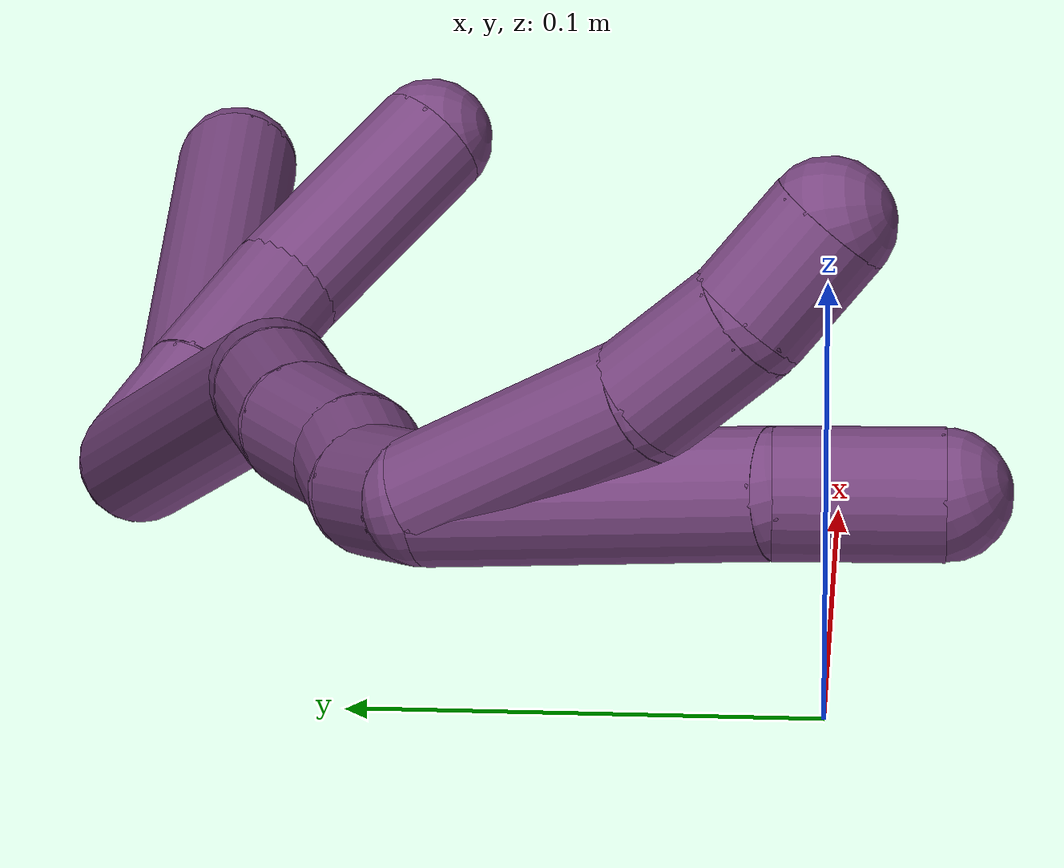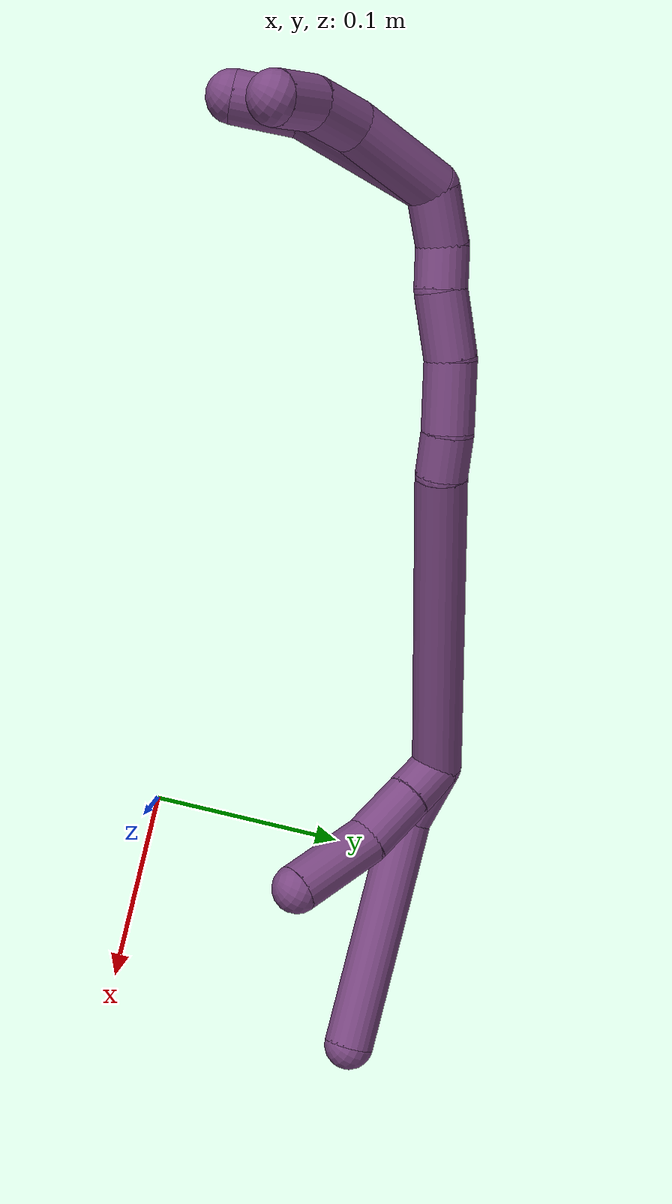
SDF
<sdf version="1.7">
 <world name="default">
  <model name="20">
   <static>0</static>
   <link name="20">
    <collision name="collision-cylinder-e_1_2_8">
     <pose>0.011991 0.010187 -2.8e-05 -1.5735 0.866553 -0.868614</pose>
     <geometry><cylinder><radius>0.0125</radius><length>0.031469</length></cylinder></geometry>
     <surface>
      <friction><ode><mu>1.16</mu><mu2>1.16</mu2><slip1>0</slip1><slip2>0</slip2></ode></friction>
      <contact><ode><kp>1e+06</kp><kd>1</kd><max_vel>0</max_vel><min_depth>0.001</min_depth></ode></contact>
     </surface>
    </collision>
    <visual name="visual-cylinder-e_1_2_8">
     <pose>0.011991 0.010187 -2.8e-05 -1.5735 0.866553 -0.868614</pose>
     <geometry><cylinder><radius>0.0125</radius><length>0.031469</length></cylinder></geometry>
     <material><ambient>0.478431 0.278431 0.509804 1</ambient></material>
    </visual>
    <collision name="collision-cylinder-e_2_8_6">
     <pose>0.056309 0.069139 -0.009514 -1.76239 0.576922 -0.690805</pose>
     <geometry><cylinder><radius>0.0125</radius><length>0.118531</length></cylinder></geometry>
     <surface>
      <friction><ode><mu>1.16</mu><mu2>1.16</mu2><slip1>0</slip1><slip2>0</slip2></ode></friction>
      <contact><ode><kp>1e+06</kp><kd>1</kd><max_vel>0</max_vel><min_depth>0.001</min_depth></ode></contact>
     </surface>
    </collision>
    <visual name="visual-cylinder-e_2_8_6">
     <pose>0.056309 0.069139 -0.009514 -1.76239 0.576922 -0.690805</pose>
     <geometry><cylinder><radius>0.0125</radius><length>0.118531</length></cylinder></geometry>
     <material><ambient>0.478431 0.278431 0.509804 1</ambient></material>
    </visual>
    <collision name="collision-cylinder-e_1_2_9">
     <pose>0.003987 0.009323 0.004987 -1.07962 0.360606 -0.217574</pose>
     <geometry><cylinder><radius>0.0125</radius><length>0.022599</length></cylinder></geometry>
     <surface>
      <friction><ode><mu>1.16</mu><mu2>1.16</mu2><slip1>0</slip1><slip2>0</slip2></ode></friction>
      <contact><ode><kp>1e+06</kp><kd>1</kd><max_vel>0</max_vel><min_depth>0.001</min_depth></ode></contact>
     </surface>
    </collision>
    <visual name="visual-cylinder-e_1_2_9">
     <pose>0.003987 0.009323 0.004987 -1.07962 0.360606 -0.217574</pose>
     <geometry><cylinder><radius>0.0125</radius><length>0.022599</length></cylinder></geometry>
     <material><ambient>0.478431 0.278431 0.509804 1</ambient></material>
    </visual>
    <collision name="collision-cylinder-e_2_9_10">
     <pose>0.014243 0.031636 0.01688 -1.08216 0.402821 -0.24416</pose>
     <geometry><cylinder><radius>0.0125</radius><length>0.031985</length></cylinder></geometry>
     <surface>
      <friction><ode><mu>1.16</mu><mu2>1.16</mu2><slip1>0</slip1><slip2>0</slip2></ode></friction>
      <contact><ode><kp>1e+06</kp><kd>1</kd><max_vel>0</max_vel><min_depth>0.001</min_depth></ode></contact>
     </surface>
    </collision>
    <visual name="visual-cylinder-e_2_9_10">
     <pose>0.014243 0.031636 0.01688 -1.08216 0.402821 -0.24416</pose>
     <geometry><cylinder><radius>0.0125</radius><length>0.031985</length></cylinder></geometry>
     <material><ambient>0.478431 0.278431 0.509804 1</ambient></material>
    </visual>
    <collision name="collision-cylinder-e_3_10_5">
     <pose>0.026794 0.061375 0.037776 -0.874916 0.280259 -0.131745</pose>
     <geometry><cylinder><radius>0.0125</radius><length>0.045416</length></cylinder></geometry>
     <surface>
      <friction><ode><mu>1.16</mu><mu2>1.16</mu2><slip1>0</slip1><slip2>0</slip2></ode></friction>
      <contact><ode><kp>1e+06</kp><kd>1</kd><max_vel>0</max_vel><min_depth>0.001</min_depth></ode></contact>
     </surface>
    </collision>
    <visual name="visual-cylinder-e_3_10_5">
     <pose>0.026794 0.061375 0.037776 -0.874916 0.280259 -0.131745</pose>
     <geometry><cylinder><radius>0.0125</radius><length>0.045416</length></cylinder></geometry>
     <material><ambient>0.478431 0.278431 0.509804 1</ambient></material>
    </visual>
    <collision name="collision-cylinder-e_1_2_11">
     <pose>-0.062014 -0.031971 0.044279 0.625365 -0.848749 -0.29009</pose>
     <geometry><cylinder><radius>0.0125</radius><length>0.165269</length></cylinder></geometry>
     <surface>
      <friction><ode><mu>1.16</mu><mu2>1.16</mu2><slip1>0</slip1><slip2>0</slip2></ode></friction>
      <contact><ode><kp>1e+06</kp><kd>1</kd><max_vel>0</max_vel><min_depth>0.001</min_depth></ode></contact>
     </surface>
    </collision>
    <visual name="visual-cylinder-e_1_2_11">
     <pose>-0.062014 -0.031971 0.044279 0.625365 -0.848749 -0.29009</pose>
     <geometry><cylinder><radius>0.0125</radius><length>0.165269</length></cylinder></geometry>
     <material><ambient>0.478431 0.278431 0.509804 1</ambient></material>
    </visual>
    <collision name="collision-cylinder-e_2_11_12">
     <pose>-0.131949 -0.069814 0.09282 0.942919 -0.829318 -0.441498</pose>
     <geometry><cylinder><radius>0.0125</radius><length>0.021485</length></cylinder></geometry>
     <surface>
      <friction><ode><mu>1.16</mu><mu2>1.16</mu2><slip1>0</slip1><slip2>0</slip2></ode></friction>
      <contact><ode><kp>1e+06</kp><kd>1</kd><max_vel>0</max_vel><min_depth>0.001</min_depth></ode></contact>
     </surface>
    </collision>
    <visual name="visual-cylinder-e_2_11_12">
     <pose>-0.131949 -0.069814 0.09282 0.942919 -0.829318 -0.441498</pose>
     <geometry><cylinder><radius>0.0125</radius><length>0.021485</length></cylinder></geometry>
     <material><ambient>0.478431 0.278431 0.509804 1</ambient></material>
    </visual>
    <collision name="collision-cylinder-e_3_12_13">
     <pose>-0.150619 -0.086519 0.104689 0.958627 -0.68196 -0.36475</pose>
     <geometry><cylinder><radius>0.0125</radius><length>0.034101</length></cylinder></geometry>
     <surface>
      <friction><ode><mu>1.16</mu><mu2>1.16</mu2><slip1>0</slip1><slip2>0</slip2></ode></friction>
      <contact><ode><kp>1e+06</kp><kd>1</kd><max_vel>0</max_vel><min_depth>0.001</min_depth></ode></contact>
     </surface>
    </collision>
    <visual name="visual-cylinder-e_3_12_13">
     <pose>-0.150619 -0.086519 0.104689 0.958627 -0.68196 -0.36475</pose>
     <geometry><cylinder><radius>0.0125</radius><length>0.034101</length></cylinder></geometry>
     <material><ambient>0.478431 0.278431 0.509804 1</ambient></material>
    </visual>
    <collision name="collision-cylinder-e_4_13_14">
     <pose>-0.169836 -0.107201 0.121922 0.796822 -0.551368 -0.237031</pose>
     <geometry><cylinder><radius>0.0125</radius><length>0.032337</length></cylinder></geometry>
     <surface>
      <friction><ode><mu>1.16</mu><mu2>1.16</mu2><slip1>0</slip1><slip2>0</slip2></ode></friction>
      <contact><ode><kp>1e+06</kp><kd>1</kd><max_vel>0</max_vel><min_depth>0.001</min_depth></ode></contact>
     </surface>
    </collision>
    <visual name="visual-cylinder-e_4_13_14">
     <pose>-0.169836 -0.107201 0.121922 0.796822 -0.551368 -0.237031</pose>
     <geometry><cylinder><radius>0.0125</radius><length>0.032337</length></cylinder></geometry>
     <material><ambient>0.478431 0.278431 0.509804 1</ambient></material>
    </visual>
    <collision name="collision-cylinder-e_5_14_15">
     <pose>-0.183999 -0.124254 0.135703 1.0477 -0.60033 -0.353866</pose>
     <geometry><cylinder><radius>0.0125</radius><length>0.020156</length></cylinder></geometry>
     <surface>
      <friction><ode><mu>1.16</mu><mu2>1.16</mu2><slip1>0</slip1><slip2>0</slip2></ode></friction>
      <contact><ode><kp>1e+06</kp><kd>1</kd><max_vel>0</max_vel><min_depth>0.001</min_depth></ode></contact>
     </surface>
    </collision>
    <visual name="visual-cylinder-e_5_14_15">
     <pose>-0.183999 -0.124254 0.135703 1.0477 -0.60033 -0.353866</pose>
     <geometry><cylinder><radius>0.0125</radius><length>0.020156</length></cylinder></geometry>
     <material><ambient>0.478431 0.278431 0.509804 1</ambient></material>
    </visual>
    <collision name="collision-cylinder-e_6_15_1">
     <pose>-0.197277 -0.138229 0.148472 0.666109 -0.605506 -0.215278</pose>
     <geometry><cylinder><radius>0.0125</radius><length>0.026652</length></cylinder></geometry>
     <surface>
      <friction><ode><mu>1.16</mu><mu2>1.16</mu2><slip1>0</slip1><slip2>0</slip2></ode></friction>
      <contact><ode><kp>1e+06</kp><kd>1</kd><max_vel>0</max_vel><min_depth>0.001</min_depth></ode></contact>
     </surface>
    </collision>
    <visual name="visual-cylinder-e_6_15_1">
     <pose>-0.197277 -0.138229 0.148472 0.666109 -0.605506 -0.215278</pose>
     <geometry><cylinder><radius>0.0125</radius><length>0.026652</length></cylinder></geometry>
     <material><ambient>0.478431 0.278431 0.509804 1</ambient></material>
    </visual>
    <collision name="collision-cylinder-e_1_1_16">
     <pose>-0.210263 -0.14332 0.181779 -0.067887 -0.214886 0.007325</pose>
     <geometry><cylinder><radius>0.0125</radius><length>0.050664</length></cylinder></geometry>
     <surface>
      <friction><ode><mu>1.16</mu><mu2>1.16</mu2><slip1>0</slip1><slip2>0</slip2></ode></friction>
      <contact><ode><kp>1e+06</kp><kd>1</kd><max_vel>0</max_vel><min_depth>0.001</min_depth></ode></contact>
     </surface>
    </collision>
    <visual name="visual-cylinder-e_1_1_16">
     <pose>-0.210263 -0.14332 0.181779 -0.067887 -0.214886 0.007325</pose>
     <geometry><cylinder><radius>0.0125</radius><length>0.050664</length></cylinder></geometry>
     <material><ambient>0.478431 0.278431 0.509804 1</ambient></material>
    </visual>
    <collision name="collision-cylinder-e_2_16_17">
     <pose>-0.218741 -0.137739 0.218524 -0.31313 -0.238199 0.037776</pose>
     <geometry><cylinder><radius>0.0125</radius><length>0.026075</length></cylinder></geometry>
     <surface>
      <friction><ode><mu>1.16</mu><mu2>1.16</mu2><slip1>0</slip1><slip2>0</slip2></ode></friction>
      <contact><ode><kp>1e+06</kp><kd>1</kd><max_vel>0</max_vel><min_depth>0.001</min_depth></ode></contact>
     </surface>
    </collision>
    <visual name="visual-cylinder-e_2_16_17">
     <pose>-0.218741 -0.137739 0.218524 -0.31313 -0.238199 0.037776</pose>
     <geometry><cylinder><radius>0.0125</radius><length>0.026075</length></cylinder></geometry>
     <material><ambient>0.478431 0.278431 0.509804 1</ambient></material>
    </visual>
    <collision name="collision-cylinder-e_3_17_4">
     <pose>-0.223557 -0.127108 0.239904 -0.624933 -0.150128 0.04858</pose>
     <geometry><cylinder><radius>0.0125</radius><length>0.023262</length></cylinder></geometry>
     <surface>
      <friction><ode><mu>1.16</mu><mu2>1.16</mu2><slip1>0</slip1><slip2>0</slip2></ode></friction>
      <contact><ode><kp>1e+06</kp><kd>1</kd><max_vel>0</max_vel><min_depth>0.001</min_depth></ode></contact>
     </surface>
    </collision>
    <visual name="visual-cylinder-e_3_17_4">
     <pose>-0.223557 -0.127108 0.239904 -0.624933 -0.150128 0.04858</pose>
     <geometry><cylinder><radius>0.0125</radius><length>0.023262</length></cylinder></geometry>
     <material><ambient>0.478431 0.278431 0.509804 1</ambient></material>
    </visual>
    <collision name="collision-cylinder-e_1_1_18">
     <pose>-0.201082 -0.150811 0.190372 0.172859 0.111389 0.009661</pose>
     <geometry><cylinder><radius>0.0125</radius><length>0.068</length></cylinder></geometry>
     <surface>
      <friction><ode><mu>1.16</mu><mu2>1.16</mu2><slip1>0</slip1><slip2>0</slip2></ode></friction>
      <contact><ode><kp>1e+06</kp><kd>1</kd><max_vel>0</max_vel><min_depth>0.001</min_depth></ode></contact>
     </surface>
    </collision>
    <visual name="visual-cylinder-e_1_1_18">
     <pose>-0.201082 -0.150811 0.190372 0.172859 0.111389 0.009661</pose>
     <geometry><cylinder><radius>0.0125</radius><length>0.068</length></cylinder></geometry>
     <material><ambient>0.478431 0.278431 0.509804 1</ambient></material>
    </visual>
    <collision name="collision-cylinder-e_2_18_3">
     <pose>-0.190663 -0.157249 0.238202 0.043068 0.427922 0.00936</pose>
     <geometry><cylinder><radius>0.0125</radius><length>0.032</length></cylinder></geometry>
     <surface>
      <friction><ode><mu>1.16</mu><mu2>1.16</mu2><slip1>0</slip1><slip2>0</slip2></ode></friction>
      <contact><ode><kp>1e+06</kp><kd>1</kd><max_vel>0</max_vel><min_depth>0.001</min_depth></ode></contact>
     </surface>
    </collision>
    <visual name="visual-cylinder-e_2_18_3">
     <pose>-0.190663 -0.157249 0.238202 0.043068 0.427922 0.00936</pose>
     <geometry><cylinder><radius>0.0125</radius><length>0.032</length></cylinder></geometry>
     <material><ambient>0.478431 0.278431 0.509804 1</ambient></material>
    </visual>
    <collision name="collision-sphere-3">
     <pose>-0.184023 -0.157876 0.252746 0 -0 0</pose>
     <geometry><sphere><radius>0.0125</radius></sphere></geometry>
     <surface>
      <friction><ode><mu>1.16</mu><mu2>1.16</mu2><slip1>0</slip1><slip2>0</slip2></ode></friction>
      <contact><ode><kp>1e+06</kp><kd>1</kd><max_vel>0</max_vel><min_depth>0.001</min_depth></ode></contact>
     </surface>
    </collision>
    <visual name="visual-sphere-3">
     <pose>-0.184023 -0.157876 0.252746 0 -0 0</pose>
     <geometry><sphere><radius>0.0125</radius></sphere></geometry>
     <material><ambient>0.478431 0.278431 0.509804 1</ambient></material>
    </visual>
    <collision name="collision-sphere-5">
     <pose>0.033075 0.078123 0.051765 0 -0 0</pose>
     <geometry><sphere><radius>0.0125</radius></sphere></geometry>
     <surface>
      <friction><ode><mu>1.16</mu><mu2>1.16</mu2><slip1>0</slip1><slip2>0</slip2></ode></friction>
      <contact><ode><kp>1e+06</kp><kd>1</kd><max_vel>0</max_vel><min_depth>0.001</min_depth></ode></contact>
     </surface>
    </collision>
    <visual name="visual-sphere-5">
     <pose>0.033075 0.078123 0.051765 0 -0 0</pose>
     <geometry><sphere><radius>0.0125</radius></sphere></geometry>
     <material><ambient>0.478431 0.278431 0.509804 1</ambient></material>
    </visual>
    <collision name="collision-sphere-10">
     <pose>0.020512 0.044627 0.023786 0 -0 0</pose>
     <geometry><sphere><radius>0.0125</radius></sphere></geometry>
     <surface>
      <friction><ode><mu>1.16</mu><mu2>1.16</mu2><slip1>0</slip1><slip2>0</slip2></ode></friction>
      <contact><ode><kp>1e+06</kp><kd>1</kd><max_vel>0</max_vel><min_depth>0.001</min_depth></ode></contact>
     </surface>
    </collision>
    <visual name="visual-sphere-10">
     <pose>0.020512 0.044627 0.023786 0 -0 0</pose>
     <geometry><sphere><radius>0.0125</radius></sphere></geometry>
     <material><ambient>0.478431 0.278431 0.509804 1</ambient></material>
    </visual>
    <collision name="collision-sphere-6">
     <pose>0.088635 0.117903 -0.018973 0 -0 0</pose>
     <geometry><sphere><radius>0.0125</radius></sphere></geometry>
     <surface>
      <friction><ode><mu>1.16</mu><mu2>1.16</mu2><slip1>0</slip1><slip2>0</slip2></ode></friction>
      <contact><ode><kp>1e+06</kp><kd>1</kd><max_vel>0</max_vel><min_depth>0.001</min_depth></ode></contact>
     </surface>
    </collision>
    <visual name="visual-sphere-6">
     <pose>0.088635 0.117903 -0.018973 0 -0 0</pose>
     <geometry><sphere><radius>0.0125</radius></sphere></geometry>
     <material><ambient>0.478431 0.278431 0.509804 1</ambient></material>
    </visual>
    <collision name="collision-sphere-9">
     <pose>0.007974 0.018645 0.009973 0 -0 0</pose>
     <geometry><sphere><radius>0.0125</radius></sphere></geometry>
     <surface>
      <friction><ode><mu>1.16</mu><mu2>1.16</mu2><slip1>0</slip1><slip2>0</slip2></ode></friction>
      <contact><ode><kp>1e+06</kp><kd>1</kd><max_vel>0</max_vel><min_depth>0.001</min_depth></ode></contact>
     </surface>
    </collision>
    <visual name="visual-sphere-9">
     <pose>0.007974 0.018645 0.009973 0 -0 0</pose>
     <geometry><sphere><radius>0.0125</radius></sphere></geometry>
     <material><ambient>0.478431 0.278431 0.509804 1</ambient></material>
    </visual>
    <collision name="collision-sphere-2">
     <geometry><sphere><radius>0.0125</radius></sphere></geometry>
     <surface>
      <friction><ode><mu>1.16</mu><mu2>1.16</mu2><slip1>0</slip1><slip2>0</slip2></ode></friction>
      <contact><ode><kp>1e+06</kp><kd>1</kd><max_vel>0</max_vel><min_depth>0.001</min_depth></ode></contact>
     </surface>
    </collision>
    <visual name="visual-sphere-2">
     <geometry><sphere><radius>0.0125</radius></sphere></geometry>
     <material><ambient>0.478431 0.278431 0.509804 1</ambient></material>
    </visual>
    <collision name="collision-sphere-8">
     <pose>0.023983 0.020375 -5.5e-05 0 -0 0</pose>
     <geometry><sphere><radius>0.0125</radius></sphere></geometry>
     <surface>
      <friction><ode><mu>1.16</mu><mu2>1.16</mu2><slip1>0</slip1><slip2>0</slip2></ode></friction>
      <contact><ode><kp>1e+06</kp><kd>1</kd><max_vel>0</max_vel><min_depth>0.001</min_depth></ode></contact>
     </surface>
    </collision>
    <visual name="visual-sphere-8">
     <pose>0.023983 0.020375 -5.5e-05 0 -0 0</pose>
     <geometry><sphere><radius>0.0125</radius></sphere></geometry>
     <material><ambient>0.478431 0.278431 0.509804 1</ambient></material>
    </visual>
    <collision name="collision-sphere-11">
     <pose>-0.124027 -0.063943 0.088558 0 -0 0</pose>
     <geometry><sphere><radius>0.0125</radius></sphere></geometry>
     <surface>
      <friction><ode><mu>1.16</mu><mu2>1.16</mu2><slip1>0</slip1><slip2>0</slip2></ode></friction>
      <contact><ode><kp>1e+06</kp><kd>1</kd><max_vel>0</max_vel><min_depth>0.001</min_depth></ode></contact>
     </surface>
    </collision>
    <visual name="visual-sphere-11">
     <pose>-0.124027 -0.063943 0.088558 0 -0 0</pose>
     <geometry><sphere><radius>0.0125</radius></sphere></geometry>
     <material><ambient>0.478431 0.278431 0.509804 1</ambient></material>
    </visual>
    <collision name="collision-sphere-12">
     <pose>-0.139871 -0.075686 0.097082 0 -0 0</pose>
     <geometry><sphere><radius>0.0125</radius></sphere></geometry>
     <surface>
      <friction><ode><mu>1.16</mu><mu2>1.16</mu2><slip1>0</slip1><slip2>0</slip2></ode></friction>
      <contact><ode><kp>1e+06</kp><kd>1</kd><max_vel>0</max_vel><min_depth>0.001</min_depth></ode></contact>
     </surface>
    </collision>
    <visual name="visual-sphere-12">
     <pose>-0.139871 -0.075686 0.097082 0 -0 0</pose>
     <geometry><sphere><radius>0.0125</radius></sphere></geometry>
     <material><ambient>0.478431 0.278431 0.509804 1</ambient></material>
    </visual>
    <collision name="collision-sphere-13">
     <pose>-0.161366 -0.097352 0.112295 0 -0 0</pose>
     <geometry><sphere><radius>0.0125</radius></sphere></geometry>
     <surface>
      <friction><ode><mu>1.16</mu><mu2>1.16</mu2><slip1>0</slip1><slip2>0</slip2></ode></friction>
      <contact><ode><kp>1e+06</kp><kd>1</kd><max_vel>0</max_vel><min_depth>0.001</min_depth></ode></contact>
     </surface>
    </collision>
    <visual name="visual-sphere-13">
     <pose>-0.161366 -0.097352 0.112295 0 -0 0</pose>
     <geometry><sphere><radius>0.0125</radius></sphere></geometry>
     <material><ambient>0.478431 0.278431 0.509804 1</ambient></material>
    </visual>
    <collision name="collision-sphere-14">
     <pose>-0.178306 -0.117051 0.131549 0 -0 0</pose>
     <geometry><sphere><radius>0.0125</radius></sphere></geometry>
     <surface>
      <friction><ode><mu>1.16</mu><mu2>1.16</mu2><slip1>0</slip1><slip2>0</slip2></ode></friction>
      <contact><ode><kp>1e+06</kp><kd>1</kd><max_vel>0</max_vel><min_depth>0.001</min_depth></ode></contact>
     </surface>
    </collision>
    <visual name="visual-sphere-14">
     <pose>-0.178306 -0.117051 0.131549 0 -0 0</pose>
     <geometry><sphere><radius>0.0125</radius></sphere></geometry>
     <material><ambient>0.478431 0.278431 0.509804 1</ambient></material>
    </visual>
    <collision name="collision-sphere-15">
     <pose>-0.189692 -0.131458 0.139858 0 -0 0</pose>
     <geometry><sphere><radius>0.0125</radius></sphere></geometry>
     <surface>
      <friction><ode><mu>1.16</mu><mu2>1.16</mu2><slip1>0</slip1><slip2>0</slip2></ode></friction>
      <contact><ode><kp>1e+06</kp><kd>1</kd><max_vel>0</max_vel><min_depth>0.001</min_depth></ode></contact>
     </surface>
    </collision>
    <visual name="visual-sphere-15">
     <pose>-0.189692 -0.131458 0.139858 0 -0 0</pose>
     <geometry><sphere><radius>0.0125</radius></sphere></geometry>
     <material><ambient>0.478431 0.278431 0.509804 1</ambient></material>
    </visual>
    <collision name="collision-sphere-1">
     <pose>-0.204862 -0.144999 0.157087 0 -0 0</pose>
     <geometry><sphere><radius>0.0125</radius></sphere></geometry>
     <surface>
      <friction><ode><mu>1.16</mu><mu2>1.16</mu2><slip1>0</slip1><slip2>0</slip2></ode></friction>
      <contact><ode><kp>1e+06</kp><kd>1</kd><max_vel>0</max_vel><min_depth>0.001</min_depth></ode></contact>
     </surface>
    </collision>
    <visual name="visual-sphere-1">
     <pose>-0.204862 -0.144999 0.157087 0 -0 0</pose>
     <geometry><sphere><radius>0.0125</radius></sphere></geometry>
     <material><ambient>0.478431 0.278431 0.509804 1</ambient></material>
    </visual>
    <collision name="collision-sphere-18">
     <pose>-0.197303 -0.156622 0.223658 0 -0 0</pose>
     <geometry><sphere><radius>0.0125</radius></sphere></geometry>
     <surface>
      <friction><ode><mu>1.16</mu><mu2>1.16</mu2><slip1>0</slip1><slip2>0</slip2></ode></friction>
      <contact><ode><kp>1e+06</kp><kd>1</kd><max_vel>0</max_vel><min_depth>0.001</min_depth></ode></contact>
     </surface>
    </collision>
    <visual name="visual-sphere-18">
     <pose>-0.197303 -0.156622 0.223658 0 -0 0</pose>
     <geometry><sphere><radius>0.0125</radius></sphere></geometry>
     <material><ambient>0.478431 0.278431 0.509804 1</ambient></material>
    </visual>
    <collision name="collision-sphere-16">
     <pose>-0.215665 -0.141641 0.206471 0 -0 0</pose>
     <geometry><sphere><radius>0.0125</radius></sphere></geometry>
     <surface>
      <friction><ode><mu>1.16</mu><mu2>1.16</mu2><slip1>0</slip1><slip2>0</slip2></ode></friction>
      <contact><ode><kp>1e+06</kp><kd>1</kd><max_vel>0</max_vel><min_depth>0.001</min_depth></ode></contact>
     </surface>
    </collision>
    <visual name="visual-sphere-16">
     <pose>-0.215665 -0.141641 0.206471 0 -0 0</pose>
     <geometry><sphere><radius>0.0125</radius></sphere></geometry>
     <material><ambient>0.478431 0.278431 0.509804 1</ambient></material>
    </visual>
    <collision name="collision-sphere-17">
     <pose>-0.221817 -0.133836 0.230577 0 -0 0</pose>
     <geometry><sphere><radius>0.0125</radius></sphere></geometry>
     <surface>
      <friction><ode><mu>1.16</mu><mu2>1.16</mu2><slip1>0</slip1><slip2>0</slip2></ode></friction>
      <contact><ode><kp>1e+06</kp><kd>1</kd><max_vel>0</max_vel><min_depth>0.001</min_depth></ode></contact>
     </surface>
    </collision>
    <visual name="visual-sphere-17">
     <pose>-0.221817 -0.133836 0.230577 0 -0 0</pose>
     <geometry><sphere><radius>0.0125</radius></sphere></geometry>
     <material><ambient>0.478431 0.278431 0.509804 1</ambient></material>
    </visual>
    <collision name="collision-sphere-4">
     <pose>-0.225297 -0.12038 0.24923 0 -0 0</pose>
     <geometry><sphere><radius>0.0125</radius></sphere></geometry>
     <surface>
      <friction><ode><mu>1.16</mu><mu2>1.16</mu2><slip1>0</slip1><slip2>0</slip2></ode></friction>
      <contact><ode><kp>1e+06</kp><kd>1</kd><max_vel>0</max_vel><min_depth>0.001</min_depth></ode></contact>
     </surface>
    </collision>
    <visual name="visual-sphere-4">
     <pose>-0.225297 -0.12038 0.24923 0 -0 0</pose>
     <geometry><sphere><radius>0.0125</radius></sphere></geometry>
     <material><ambient>0.478431 0.278431 0.509804 1</ambient></material>
    </visual>
    <inertial>
     <pose>-0.086928 -0.047947 0.08775 0 -0 0</pose>
     <mass>0.75</mass>
     <inertia>
      <ixx>0.000248</ixx>
      <ixy>0</ixy>
      <ixz>0</ixz>
      <iyy>0.000294</iyy>
      <iyz>0</iyz>
      <izz>0.000265</izz>
     </inertia>
    </inertial>
   </link>
   <pose>-0.057103 0.137901 0.083777 1.0288 0.811939 -0.613614</pose>
  </model>
 </world>
</sdf>
